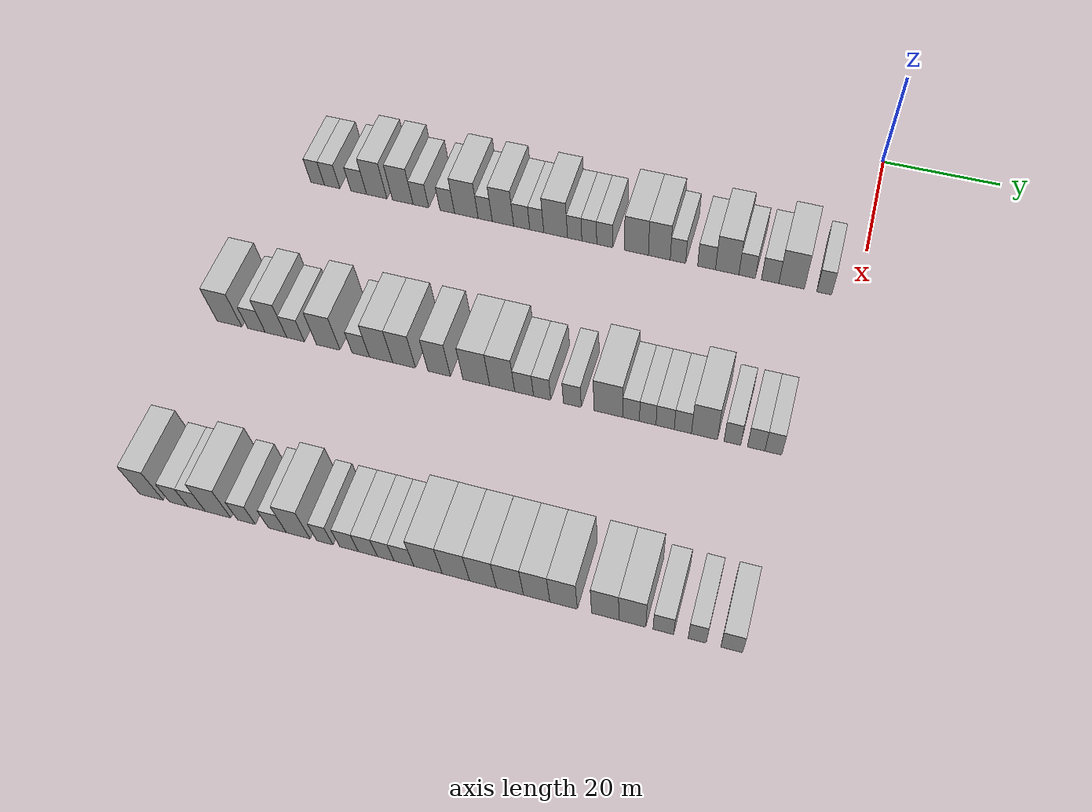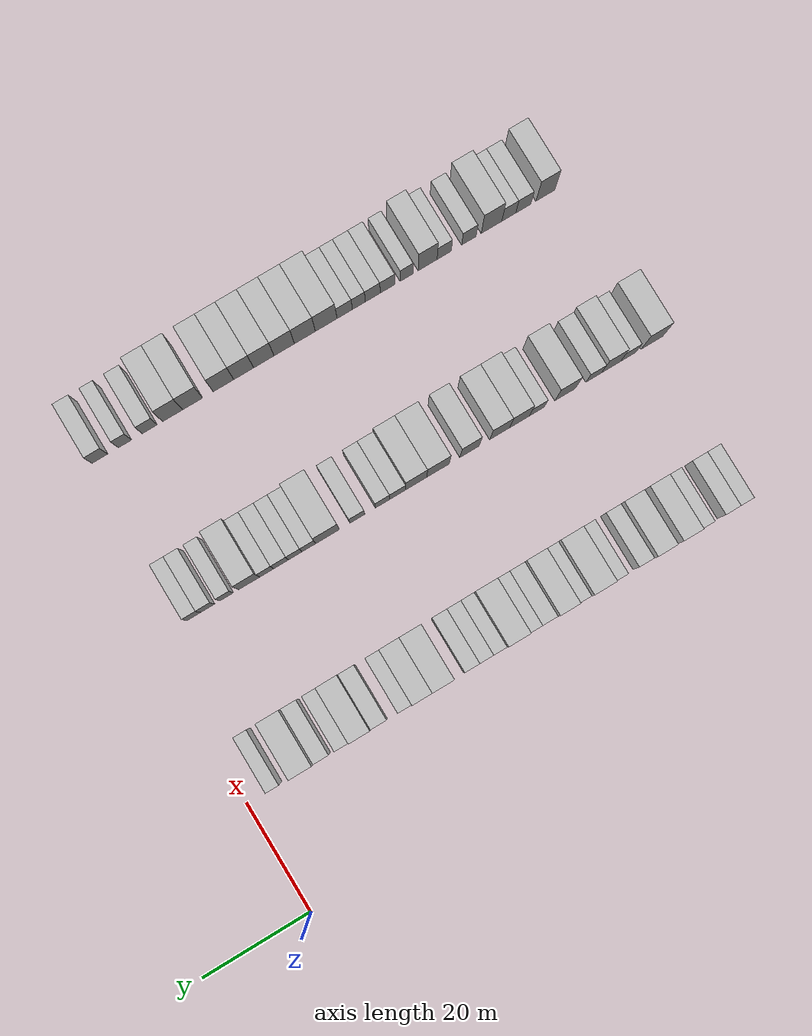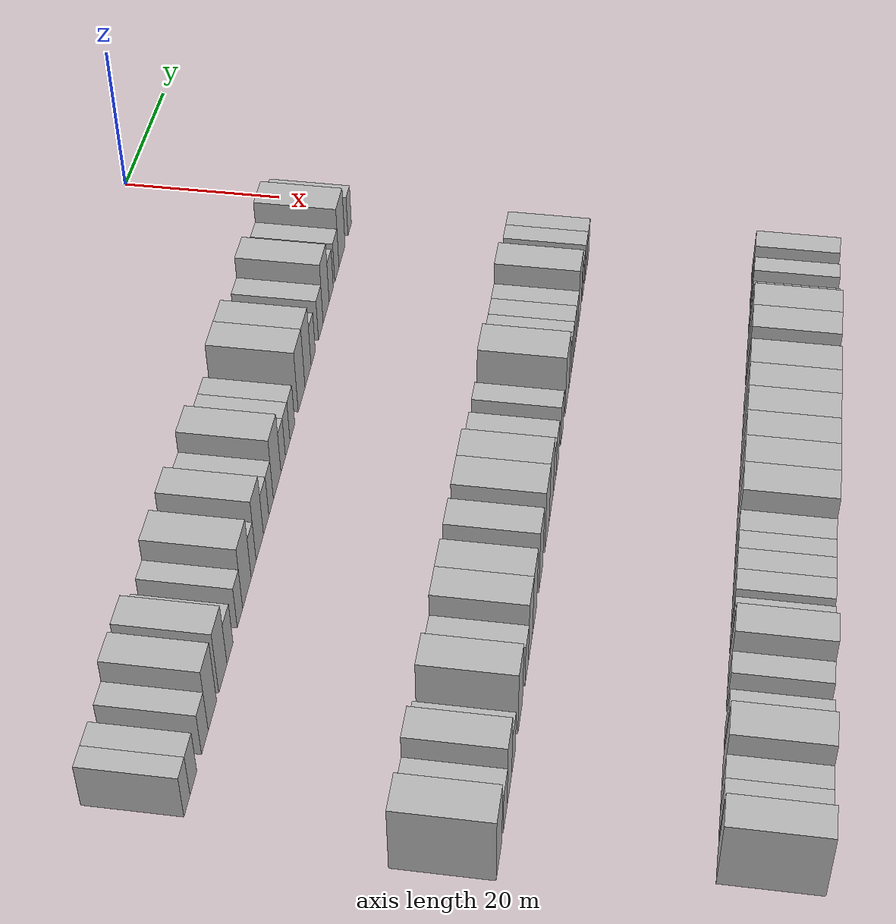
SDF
<sdf version="1.6">
 <world name="default">
  <model name="building_47">
   <static>1</static>
   <pose>25.0000 -92.5066 0 0.000000 0.000000 0.000000</pose>
   <link name="link">
    <pose>0 0 3.00 0 0 0</pose>
    <collision name="collision"><geometry><box><size>10.0000 2.4819 6.0000</size></box></geometry></collision>
    <visual name="visual">
     <cast_shadows>0</cast_shadows>
     <geometry><box><size>10.0000 2.4819 6.0000</size></box></geometry>
     <material>
      <script>
       <uri>model://HANNAS_wall/materials/scripts</uri>
       <uri>model://HANNAS_wall/materials/textures</uri>
       <name>vrc/HANNAS_wall</name>
      </script>
     </material>
    </visual>
   </link>
  </model>
  <model name="building_48">
   <static>1</static>
   <pose>25.0000 -89.8586 0 0.000000 0.000000 0.000000</pose>
   <link name="link">
    <pose>0 0 3.00 0 0 0</pose>
    <collision name="collision"><geometry><box><size>10.0000 2.8140 6.0000</size></box></geometry></collision>
    <visual name="visual">
     <cast_shadows>0</cast_shadows>
     <geometry><box><size>10.0000 2.8140 6.0000</size></box></geometry>
     <material>
      <script>
       <uri>model://HANNAS_wall/materials/scripts</uri>
       <uri>model://HANNAS_wall/materials/textures</uri>
       <name>vrc/HANNAS_wall</name>
      </script>
     </material>
    </visual>
   </link>
  </model>
  <model name="building_49">
   <static>1</static>
   <pose>25.0000 -85.0207 0 0.000000 0.000000 0.000000</pose>
   <link name="link">
    <pose>0 0 3.00 0 0 0</pose>
    <collision name="collision"><geometry><box><size>10.0000 2.8617 6.0000</size></box></geometry></collision>
    <visual name="visual">
     <cast_shadows>0</cast_shadows>
     <geometry><box><size>10.0000 2.8617 6.0000</size></box></geometry>
     <material>
      <script>
       <uri>model://HANNAS_wall/materials/scripts</uri>
       <uri>model://HANNAS_wall/materials/textures</uri>
       <name>vrc/HANNAS_wall</name>
      </script>
     </material>
    </visual>
   </link>
  </model>
  <model name="building_50">
   <static>1</static>
   <pose>25.0000 -81.7540 0 0.000000 0.000000 0.000000</pose>
   <link name="link">
    <pose>0 0 4.50 0 0 0</pose>
    <collision name="collision"><geometry><box><size>10.0000 3.6718 9.0000</size></box></geometry></collision>
    <visual name="visual">
     <cast_shadows>0</cast_shadows>
     <geometry><box><size>10.0000 3.6718 9.0000</size></box></geometry>
     <material>
      <script>
       <uri>model://HANNAS_wall/materials/scripts</uri>
       <uri>model://HANNAS_wall/materials/textures</uri>
       <name>vrc/HANNAS_wall</name>
      </script>
     </material>
    </visual>
   </link>
  </model>
  <model name="building_51">
   <static>1</static>
   <pose>25.0000 -77.0680 0 0.000000 0.000000 0.000000</pose>
   <link name="link">
    <pose>0 0 4.50 0 0 0</pose>
    <collision name="collision"><geometry><box><size>10.0000 3.7001 9.0000</size></box></geometry></collision>
    <visual name="visual">
     <cast_shadows>0</cast_shadows>
     <geometry><box><size>10.0000 3.7001 9.0000</size></box></geometry>
     <material>
      <script>
       <uri>model://HANNAS_wall/materials/scripts</uri>
       <uri>model://HANNAS_wall/materials/textures</uri>
       <name>vrc/HANNAS_wall</name>
      </script>
     </material>
    </visual>
   </link>
  </model>
  <model name="building_52">
   <static>1</static>
   <pose>25.0000 -73.8160 0 0.000000 0.000000 0.000000</pose>
   <link name="link">
    <pose>0 0 3.00 0 0 0</pose>
    <collision name="collision"><geometry><box><size>10.0000 2.8038 6.0000</size></box></geometry></collision>
    <visual name="visual">
     <cast_shadows>0</cast_shadows>
     <geometry><box><size>10.0000 2.8038 6.0000</size></box></geometry>
     <material>
      <script>
       <uri>model://HANNAS_wall/materials/scripts</uri>
       <uri>model://HANNAS_wall/materials/textures</uri>
       <name>vrc/HANNAS_wall</name>
      </script>
     </material>
    </visual>
   </link>
  </model>
  <model name="building_53">
   <static>1</static>
   <pose>25.0000 -69.1145 0 0.000000 0.000000 0.000000</pose>
   <link name="link">
    <pose>0 0 3.00 0 0 0</pose>
    <collision name="collision"><geometry><box><size>10.0000 2.5993 6.0000</size></box></geometry></collision>
    <visual name="visual">
     <cast_shadows>0</cast_shadows>
     <geometry><box><size>10.0000 2.5993 6.0000</size></box></geometry>
     <material>
      <script>
       <uri>model://HANNAS_wall/materials/scripts</uri>
       <uri>model://HANNAS_wall/materials/textures</uri>
       <name>vrc/HANNAS_wall</name>
      </script>
     </material>
    </visual>
   </link>
  </model>
  <model name="building_54">
   <static>1</static>
   <pose>25.0000 -65.7245 0 0.000000 0.000000 0.000000</pose>
   <link name="link">
    <pose>0 0 4.50 0 0 0</pose>
    <collision name="collision"><geometry><box><size>10.0000 4.1807 9.0000</size></box></geometry></collision>
    <visual name="visual">
     <cast_shadows>0</cast_shadows>
     <geometry><box><size>10.0000 4.1807 9.0000</size></box></geometry>
     <material>
      <script>
       <uri>model://HANNAS_wall/materials/scripts</uri>
       <uri>model://HANNAS_wall/materials/textures</uri>
       <name>vrc/HANNAS_wall</name>
      </script>
     </material>
    </visual>
   </link>
  </model>
  <model name="building_55">
   <static>1</static>
   <pose>25.0000 -62.4062 0 0.000000 0.000000 0.000000</pose>
   <link name="link">
    <pose>0 0 3.00 0 0 0</pose>
    <collision name="collision"><geometry><box><size>10.0000 2.4560 6.0000</size></box></geometry></collision>
    <visual name="visual">
     <cast_shadows>0</cast_shadows>
     <geometry><box><size>10.0000 2.4560 6.0000</size></box></geometry>
     <material>
      <script>
       <uri>model://HANNAS_wall/materials/scripts</uri>
       <uri>model://HANNAS_wall/materials/textures</uri>
       <name>vrc/HANNAS_wall</name>
      </script>
     </material>
    </visual>
   </link>
  </model>
  <model name="building_56">
   <static>1</static>
   <pose>25.0000 -59.3049 0 0.000000 0.000000 0.000000</pose>
   <link name="link">
    <pose>0 0 4.50 0 0 0</pose>
    <collision name="collision"><geometry><box><size>10.0000 3.7465 9.0000</size></box></geometry></collision>
    <visual name="visual">
     <cast_shadows>0</cast_shadows>
     <geometry><box><size>10.0000 3.7465 9.0000</size></box></geometry>
     <material>
      <script>
       <uri>model://HANNAS_wall/materials/scripts</uri>
       <uri>model://HANNAS_wall/materials/textures</uri>
       <name>vrc/HANNAS_wall</name>
      </script>
     </material>
    </visual>
   </link>
  </model>
  <model name="building_57">
   <static>1</static>
   <pose>25.0000 -56.0258 0 0.000000 0.000000 0.000000</pose>
   <link name="link">
    <pose>0 0 3.00 0 0 0</pose>
    <collision name="collision"><geometry><box><size>10.0000 2.8116 6.0000</size></box></geometry></collision>
    <visual name="visual">
     <cast_shadows>0</cast_shadows>
     <geometry><box><size>10.0000 2.8116 6.0000</size></box></geometry>
     <material>
      <script>
       <uri>model://HANNAS_wall/materials/scripts</uri>
       <uri>model://HANNAS_wall/materials/textures</uri>
       <name>vrc/HANNAS_wall</name>
      </script>
     </material>
    </visual>
   </link>
  </model>
  <model name="building_58">
   <static>1</static>
   <pose>25.0000 -53.4085 0 0.000000 0.000000 0.000000</pose>
   <link name="link">
    <pose>0 0 3.00 0 0 0</pose>
    <collision name="collision"><geometry><box><size>10.0000 2.4229 6.0000</size></box></geometry></collision>
    <visual name="visual">
     <cast_shadows>0</cast_shadows>
     <geometry><box><size>10.0000 2.4229 6.0000</size></box></geometry>
     <material>
      <script>
       <uri>model://HANNAS_wall/materials/scripts</uri>
       <uri>model://HANNAS_wall/materials/textures</uri>
       <name>vrc/HANNAS_wall</name>
      </script>
     </material>
    </visual>
   </link>
  </model>
  <model name="building_59">
   <static>1</static>
   <pose>25.0000 -50.1479 0 0.000000 0.000000 0.000000</pose>
   <link name="link">
    <pose>0 0 4.50 0 0 0</pose>
    <collision name="collision"><geometry><box><size>10.0000 4.0984 9.0000</size></box></geometry></collision>
    <visual name="visual">
     <cast_shadows>0</cast_shadows>
     <geometry><box><size>10.0000 4.0984 9.0000</size></box></geometry>
     <material>
      <script>
       <uri>model://HANNAS_wall/materials/scripts</uri>
       <uri>model://HANNAS_wall/materials/textures</uri>
       <name>vrc/HANNAS_wall</name>
      </script>
     </material>
    </visual>
   </link>
  </model>
  <model name="building_60">
   <static>1</static>
   <pose>25.0000 -46.8651 0 0.000000 0.000000 0.000000</pose>
   <link name="link">
    <pose>0 0 3.00 0 0 0</pose>
    <collision name="collision"><geometry><box><size>10.0000 2.4670 6.0000</size></box></geometry></collision>
    <visual name="visual">
     <cast_shadows>0</cast_shadows>
     <geometry><box><size>10.0000 2.4670 6.0000</size></box></geometry>
     <material>
      <script>
       <uri>model://HANNAS_wall/materials/scripts</uri>
       <uri>model://HANNAS_wall/materials/textures</uri>
       <name>vrc/HANNAS_wall</name>
      </script>
     </material>
    </visual>
   </link>
  </model>
  <model name="building_61">
   <static>1</static>
   <pose>25.0000 -44.3567 0 0.000000 0.000000 0.000000</pose>
   <link name="link">
    <pose>0 0 3.00 0 0 0</pose>
    <collision name="collision"><geometry><box><size>10.0000 2.5499 6.0000</size></box></geometry></collision>
    <visual name="visual">
     <cast_shadows>0</cast_shadows>
     <geometry><box><size>10.0000 2.5499 6.0000</size></box></geometry>
     <material>
      <script>
       <uri>model://HANNAS_wall/materials/scripts</uri>
       <uri>model://HANNAS_wall/materials/textures</uri>
       <name>vrc/HANNAS_wall</name>
      </script>
     </material>
    </visual>
   </link>
  </model>
  <model name="building_62">
   <static>1</static>
   <pose>25.0000 -41.7096 0 0.000000 0.000000 0.000000</pose>
   <link name="link">
    <pose>0 0 3.00 0 0 0</pose>
    <collision name="collision"><geometry><box><size>10.0000 2.7442 6.0000</size></box></geometry></collision>
    <visual name="visual">
     <cast_shadows>0</cast_shadows>
     <geometry><box><size>10.0000 2.7442 6.0000</size></box></geometry>
     <material>
      <script>
       <uri>model://HANNAS_wall/materials/scripts</uri>
       <uri>model://HANNAS_wall/materials/textures</uri>
       <name>vrc/HANNAS_wall</name>
      </script>
     </material>
    </visual>
   </link>
  </model>
  <model name="building_63">
   <static>1</static>
   <pose>25.0000 -36.3297 0 0.000000 0.000000 0.000000</pose>
   <link name="link">
    <pose>0 0 4.50 0 0 0</pose>
    <collision name="collision"><geometry><box><size>10.0000 4.0154 9.0000</size></box></geometry></collision>
    <visual name="visual">
     <cast_shadows>0</cast_shadows>
     <geometry><box><size>10.0000 4.0154 9.0000</size></box></geometry>
     <material>
      <script>
       <uri>model://HANNAS_wall/materials/scripts</uri>
       <uri>model://HANNAS_wall/materials/textures</uri>
       <name>vrc/HANNAS_wall</name>
      </script>
     </material>
    </visual>
   </link>
  </model>
  <model name="building_64">
   <static>1</static>
   <pose>25.0000 -32.4875 0 0.000000 0.000000 0.000000</pose>
   <link name="link">
    <pose>0 0 4.50 0 0 0</pose>
    <collision name="collision"><geometry><box><size>10.0000 3.6691 9.0000</size></box></geometry></collision>
    <visual name="visual">
     <cast_shadows>0</cast_shadows>
     <geometry><box><size>10.0000 3.6691 9.0000</size></box></geometry>
     <material>
      <script>
       <uri>model://HANNAS_wall/materials/scripts</uri>
       <uri>model://HANNAS_wall/materials/textures</uri>
       <name>vrc/HANNAS_wall</name>
      </script>
     </material>
    </visual>
   </link>
  </model>
  <model name="building_65">
   <static>1</static>
   <pose>25.0000 -29.3647 0 0.000000 0.000000 0.000000</pose>
   <link name="link">
    <pose>0 0 3.00 0 0 0</pose>
    <collision name="collision"><geometry><box><size>10.0000 2.5765 6.0000</size></box></geometry></collision>
    <visual name="visual">
     <cast_shadows>0</cast_shadows>
     <geometry><box><size>10.0000 2.5765 6.0000</size></box></geometry>
     <material>
      <script>
       <uri>model://HANNAS_wall/materials/scripts</uri>
       <uri>model://HANNAS_wall/materials/textures</uri>
       <name>vrc/HANNAS_wall</name>
      </script>
     </material>
    </visual>
   </link>
  </model>
  <model name="building_66">
   <static>1</static>
   <pose>25.0000 -24.5960 0 0.000000 0.000000 0.000000</pose>
   <link name="link">
    <pose>0 0 3.00 0 0 0</pose>
    <collision name="collision"><geometry><box><size>10.0000 2.9610 6.0000</size></box></geometry></collision>
    <visual name="visual">
     <cast_shadows>0</cast_shadows>
     <geometry><box><size>10.0000 2.9610 6.0000</size></box></geometry>
     <material>
      <script>
       <uri>model://HANNAS_wall/materials/scripts</uri>
       <uri>model://HANNAS_wall/materials/textures</uri>
       <name>vrc/HANNAS_wall</name>
      </script>
     </material>
    </visual>
   </link>
  </model>
  <model name="building_67">
   <static>1</static>
   <pose>25.0000 -21.1800 0 0.000000 0.000000 0.000000</pose>
   <link name="link">
    <pose>0 0 4.50 0 0 0</pose>
    <collision name="collision"><geometry><box><size>10.0000 3.8709 9.0000</size></box></geometry></collision>
    <visual name="visual">
     <cast_shadows>0</cast_shadows>
     <geometry><box><size>10.0000 3.8709 9.0000</size></box></geometry>
     <material>
      <script>
       <uri>model://HANNAS_wall/materials/scripts</uri>
       <uri>model://HANNAS_wall/materials/textures</uri>
       <name>vrc/HANNAS_wall</name>
      </script>
     </material>
    </visual>
   </link>
  </model>
  <model name="building_68">
   <static>1</static>
   <pose>25.0000 -17.8915 0 0.000000 0.000000 0.000000</pose>
   <link name="link">
    <pose>0 0 3.00 0 0 0</pose>
    <collision name="collision"><geometry><box><size>10.0000 2.7062 6.0000</size></box></geometry></collision>
    <visual name="visual">
     <cast_shadows>0</cast_shadows>
     <geometry><box><size>10.0000 2.7062 6.0000</size></box></geometry>
     <material>
      <script>
       <uri>model://HANNAS_wall/materials/scripts</uri>
       <uri>model://HANNAS_wall/materials/textures</uri>
       <name>vrc/HANNAS_wall</name>
      </script>
     </material>
    </visual>
   </link>
  </model>
  <model name="building_69">
   <static>1</static>
   <pose>25.0000 -14.1137 0 0.000000 0.000000 0.000000</pose>
   <link name="link">
    <pose>0 0 3.00 0 0 0</pose>
    <collision name="collision"><geometry><box><size>10.0000 2.8492 6.0000</size></box></geometry></collision>
    <visual name="visual">
     <cast_shadows>0</cast_shadows>
     <geometry><box><size>10.0000 2.8492 6.0000</size></box></geometry>
     <material>
      <script>
       <uri>model://HANNAS_wall/materials/scripts</uri>
       <uri>model://HANNAS_wall/materials/textures</uri>
       <name>vrc/HANNAS_wall</name>
      </script>
     </material>
    </visual>
   </link>
  </model>
  <model name="building_70">
   <static>1</static>
   <pose>25.0000 -10.6083 0 0.000000 0.000000 0.000000</pose>
   <link name="link">
    <pose>0 0 4.50 0 0 0</pose>
    <collision name="collision"><geometry><box><size>10.0000 4.1617 9.0000</size></box></geometry></collision>
    <visual name="visual">
     <cast_shadows>0</cast_shadows>
     <geometry><box><size>10.0000 4.1617 9.0000</size></box></geometry>
     <material>
      <script>
       <uri>model://HANNAS_wall/materials/scripts</uri>
       <uri>model://HANNAS_wall/materials/textures</uri>
       <name>vrc/HANNAS_wall</name>
      </script>
     </material>
    </visual>
   </link>
  </model>
  <model name="building_71">
   <static>1</static>
   <pose>25.0000 -5.3193 0 0.000000 0.000000 0.000000</pose>
   <link name="link">
    <pose>0 0 3.00 0 0 0</pose>
    <collision name="collision"><geometry><box><size>10.0000 2.4162 6.0000</size></box></geometry></collision>
    <visual name="visual">
     <cast_shadows>0</cast_shadows>
     <geometry><box><size>10.0000 2.4162 6.0000</size></box></geometry>
     <material>
      <script>
       <uri>model://HANNAS_wall/materials/scripts</uri>
       <uri>model://HANNAS_wall/materials/textures</uri>
       <name>vrc/HANNAS_wall</name>
      </script>
     </material>
    </visual>
   </link>
  </model>
  <model name="building_193">
   <static>1</static>
   <pose>55.0000 -94.6234 0 0.000000 0.000000 0.000000</pose>
   <link name="link">
    <pose>0 0 4.50 0 0 0</pose>
    <collision name="collision"><geometry><box><size>10.0000 4.2221 9.0000</size></box></geometry></collision>
    <visual name="visual">
     <cast_shadows>0</cast_shadows>
     <geometry><box><size>10.0000 4.2221 9.0000</size></box></geometry>
     <material>
      <script>
       <uri>model://HANNAS_wall/materials/scripts</uri>
       <uri>model://HANNAS_wall/materials/textures</uri>
       <name>vrc/HANNAS_wall</name>
      </script>
     </material>
    </visual>
   </link>
  </model>
  <model name="building_194">
   <static>1</static>
   <pose>55.0000 -90.0235 0 0.000000 0.000000 0.000000</pose>
   <link name="link">
    <pose>0 0 3.00 0 0 0</pose>
    <collision name="collision"><geometry><box><size>10.0000 2.9777 6.0000</size></box></geometry></collision>
    <visual name="visual">
     <cast_shadows>0</cast_shadows>
     <geometry><box><size>10.0000 2.9777 6.0000</size></box></geometry>
     <material>
      <script>
       <uri>model://HANNAS_wall/materials/scripts</uri>
       <uri>model://HANNAS_wall/materials/textures</uri>
       <name>vrc/HANNAS_wall</name>
      </script>
     </material>
    </visual>
   </link>
  </model>
  <model name="building_195">
   <static>1</static>
   <pose>55.0000 -86.7123 0 0.000000 0.000000 0.000000</pose>
   <link name="link">
    <pose>0 0 4.50 0 0 0</pose>
    <collision name="collision"><geometry><box><size>10.0000 3.6446 9.0000</size></box></geometry></collision>
    <visual name="visual">
     <cast_shadows>0</cast_shadows>
     <geometry><box><size>10.0000 3.6446 9.0000</size></box></geometry>
     <material>
      <script>
       <uri>model://HANNAS_wall/materials/scripts</uri>
       <uri>model://HANNAS_wall/materials/textures</uri>
       <name>vrc/HANNAS_wall</name>
      </script>
     </material>
    </visual>
   </link>
  </model>
  <model name="building_196">
   <static>1</static>
   <pose>55.0000 -83.4056 0 0.000000 0.000000 0.000000</pose>
   <link name="link">
    <pose>0 0 3.00 0 0 0</pose>
    <collision name="collision"><geometry><box><size>10.0000 2.9688 6.0000</size></box></geometry></collision>
    <visual name="visual">
     <cast_shadows>0</cast_shadows>
     <geometry><box><size>10.0000 2.9688 6.0000</size></box></geometry>
     <material>
      <script>
       <uri>model://HANNAS_wall/materials/scripts</uri>
       <uri>model://HANNAS_wall/materials/textures</uri>
       <name>vrc/HANNAS_wall</name>
      </script>
     </material>
    </visual>
   </link>
  </model>
  <model name="building_197">
   <static>1</static>
   <pose>55.0000 -77.9471 0 0.000000 0.000000 0.000000</pose>
   <link name="link">
    <pose>0 0 4.50 0 0 0</pose>
    <collision name="collision"><geometry><box><size>10.0000 3.9482 9.0000</size></box></geometry></collision>
    <visual name="visual">
     <cast_shadows>0</cast_shadows>
     <geometry><box><size>10.0000 3.9482 9.0000</size></box></geometry>
     <material>
      <script>
       <uri>model://HANNAS_wall/materials/scripts</uri>
       <uri>model://HANNAS_wall/materials/textures</uri>
       <name>vrc/HANNAS_wall</name>
      </script>
     </material>
    </visual>
   </link>
  </model>
  <model name="building_198">
   <static>1</static>
   <pose>55.0000 -72.5440 0 0.000000 0.000000 0.000000</pose>
   <link name="link">
    <pose>0 0 3.00 0 0 0</pose>
    <collision name="collision"><geometry><box><size>10.0000 2.8580 6.0000</size></box></geometry></collision>
    <visual name="visual">
     <cast_shadows>0</cast_shadows>
     <geometry><box><size>10.0000 2.8580 6.0000</size></box></geometry>
     <material>
      <script>
       <uri>model://HANNAS_wall/materials/scripts</uri>
       <uri>model://HANNAS_wall/materials/textures</uri>
       <name>vrc/HANNAS_wall</name>
      </script>
     </material>
    </visual>
   </link>
  </model>
  <model name="building_199">
   <static>1</static>
   <pose>55.0000 -69.2046 0 0.000000 0.000000 0.000000</pose>
   <link name="link">
    <pose>0 0 4.50 0 0 0</pose>
    <collision name="collision"><geometry><box><size>10.0000 3.8208 9.0000</size></box></geometry></collision>
    <visual name="visual">
     <cast_shadows>0</cast_shadows>
     <geometry><box><size>10.0000 3.8208 9.0000</size></box></geometry>
     <material>
      <script>
       <uri>model://HANNAS_wall/materials/scripts</uri>
       <uri>model://HANNAS_wall/materials/textures</uri>
       <name>vrc/HANNAS_wall</name>
      </script>
     </material>
    </visual>
   </link>
  </model>
  <model name="building_200">
   <static>1</static>
   <pose>55.0000 -65.4176 0 0.000000 0.000000 0.000000</pose>
   <link name="link">
    <pose>0 0 4.50 0 0 0</pose>
    <collision name="collision"><geometry><box><size>10.0000 3.7532 9.0000</size></box></geometry></collision>
    <visual name="visual">
     <cast_shadows>0</cast_shadows>
     <geometry><box><size>10.0000 3.7532 9.0000</size></box></geometry>
     <material>
      <script>
       <uri>model://HANNAS_wall/materials/scripts</uri>
       <uri>model://HANNAS_wall/materials/textures</uri>
       <name>vrc/HANNAS_wall</name>
      </script>
     </material>
    </visual>
   </link>
  </model>
  <model name="building_201">
   <static>1</static>
   <pose>55.0000 -59.7043 0 0.000000 0.000000 0.000000</pose>
   <link name="link">
    <pose>0 0 4.50 0 0 0</pose>
    <collision name="collision"><geometry><box><size>10.0000 3.6733 9.0000</size></box></geometry></collision>
    <visual name="visual">
     <cast_shadows>0</cast_shadows>
     <geometry><box><size>10.0000 3.6733 9.0000</size></box></geometry>
     <material>
      <script>
       <uri>model://HANNAS_wall/materials/scripts</uri>
       <uri>model://HANNAS_wall/materials/textures</uri>
       <name>vrc/HANNAS_wall</name>
      </script>
     </material>
    </visual>
   </link>
  </model>
  <model name="building_202">
   <static>1</static>
   <pose>55.0000 -53.7232 0 0.000000 0.000000 0.000000</pose>
   <link name="link">
    <pose>0 0 4.50 0 0 0</pose>
    <collision name="collision"><geometry><box><size>10.0000 4.2890 9.0000</size></box></geometry></collision>
    <visual name="visual">
     <cast_shadows>0</cast_shadows>
     <geometry><box><size>10.0000 4.2890 9.0000</size></box></geometry>
     <material>
      <script>
       <uri>model://HANNAS_wall/materials/scripts</uri>
       <uri>model://HANNAS_wall/materials/textures</uri>
       <name>vrc/HANNAS_wall</name>
      </script>
     </material>
    </visual>
   </link>
  </model>
  <model name="building_203">
   <static>1</static>
   <pose>55.0000 -49.5824 0 0.000000 0.000000 0.000000</pose>
   <link name="link">
    <pose>0 0 4.50 0 0 0</pose>
    <collision name="collision"><geometry><box><size>10.0000 3.9925 9.0000</size></box></geometry></collision>
    <visual name="visual">
     <cast_shadows>0</cast_shadows>
     <geometry><box><size>10.0000 3.9925 9.0000</size></box></geometry>
     <material>
      <script>
       <uri>model://HANNAS_wall/materials/scripts</uri>
       <uri>model://HANNAS_wall/materials/textures</uri>
       <name>vrc/HANNAS_wall</name>
      </script>
     </material>
    </visual>
   </link>
  </model>
  <model name="building_204">
   <static>1</static>
   <pose>55.0000 -46.0960 0 0.000000 0.000000 0.000000</pose>
   <link name="link">
    <pose>0 0 3.00 0 0 0</pose>
    <collision name="collision"><geometry><box><size>10.0000 2.9804 6.0000</size></box></geometry></collision>
    <visual name="visual">
     <cast_shadows>0</cast_shadows>
     <geometry><box><size>10.0000 2.9804 6.0000</size></box></geometry>
     <material>
      <script>
       <uri>model://HANNAS_wall/materials/scripts</uri>
       <uri>model://HANNAS_wall/materials/textures</uri>
       <name>vrc/HANNAS_wall</name>
      </script>
     </material>
    </visual>
   </link>
  </model>
  <model name="building_205">
   <static>1</static>
   <pose>55.0000 -43.2446 0 0.000000 0.000000 0.000000</pose>
   <link name="link">
    <pose>0 0 3.00 0 0 0</pose>
    <collision name="collision"><geometry><box><size>10.0000 2.7223 6.0000</size></box></geometry></collision>
    <visual name="visual">
     <cast_shadows>0</cast_shadows>
     <geometry><box><size>10.0000 2.7223 6.0000</size></box></geometry>
     <material>
      <script>
       <uri>model://HANNAS_wall/materials/scripts</uri>
       <uri>model://HANNAS_wall/materials/textures</uri>
       <name>vrc/HANNAS_wall</name>
      </script>
     </material>
    </visual>
   </link>
  </model>
  <model name="building_206">
   <static>1</static>
   <pose>55.0000 -38.4884 0 0.000000 0.000000 0.000000</pose>
   <link name="link">
    <pose>0 0 3.00 0 0 0</pose>
    <collision name="collision"><geometry><box><size>10.0000 2.7902 6.0000</size></box></geometry></collision>
    <visual name="visual">
     <cast_shadows>0</cast_shadows>
     <geometry><box><size>10.0000 2.7902 6.0000</size></box></geometry>
     <material>
      <script>
       <uri>model://HANNAS_wall/materials/scripts</uri>
       <uri>model://HANNAS_wall/materials/textures</uri>
       <name>vrc/HANNAS_wall</name>
      </script>
     </material>
    </visual>
   </link>
  </model>
  <model name="building_207">
   <static>1</static>
   <pose>55.0000 -32.8705 0 0.000000 0.000000 0.000000</pose>
   <link name="link">
    <pose>0 0 4.50 0 0 0</pose>
    <collision name="collision"><geometry><box><size>10.0000 4.4456 9.0000</size></box></geometry></collision>
    <visual name="visual">
     <cast_shadows>0</cast_shadows>
     <geometry><box><size>10.0000 4.4456 9.0000</size></box></geometry>
     <material>
      <script>
       <uri>model://HANNAS_wall/materials/scripts</uri>
       <uri>model://HANNAS_wall/materials/textures</uri>
       <name>vrc/HANNAS_wall</name>
      </script>
     </material>
    </visual>
   </link>
  </model>
  <model name="building_208">
   <static>1</static>
   <pose>55.0000 -29.3634 0 0.000000 0.000000 0.000000</pose>
   <link name="link">
    <pose>0 0 3.00 0 0 0</pose>
    <collision name="collision"><geometry><box><size>10.0000 2.5686 6.0000</size></box></geometry></collision>
    <visual name="visual">
     <cast_shadows>0</cast_shadows>
     <geometry><box><size>10.0000 2.5686 6.0000</size></box></geometry>
     <material>
      <script>
       <uri>model://HANNAS_wall/materials/scripts</uri>
       <uri>model://HANNAS_wall/materials/textures</uri>
       <name>vrc/HANNAS_wall</name>
      </script>
     </material>
    </visual>
   </link>
  </model>
  <model name="building_209">
   <static>1</static>
   <pose>55.0000 -26.8086 0 0.000000 0.000000 0.000000</pose>
   <link name="link">
    <pose>0 0 3.00 0 0 0</pose>
    <collision name="collision"><geometry><box><size>10.0000 2.5410 6.0000</size></box></geometry></collision>
    <visual name="visual">
     <cast_shadows>0</cast_shadows>
     <geometry><box><size>10.0000 2.5410 6.0000</size></box></geometry>
     <material>
      <script>
       <uri>model://HANNAS_wall/materials/scripts</uri>
       <uri>model://HANNAS_wall/materials/textures</uri>
       <name>vrc/HANNAS_wall</name>
      </script>
     </material>
    </visual>
   </link>
  </model>
  <model name="building_210">
   <static>1</static>
   <pose>55.0000 -24.1452 0 0.000000 0.000000 0.000000</pose>
   <link name="link">
    <pose>0 0 3.00 0 0 0</pose>
    <collision name="collision"><geometry><box><size>10.0000 2.7859 6.0000</size></box></geometry></collision>
    <visual name="visual">
     <cast_shadows>0</cast_shadows>
     <geometry><box><size>10.0000 2.7859 6.0000</size></box></geometry>
     <material>
      <script>
       <uri>model://HANNAS_wall/materials/scripts</uri>
       <uri>model://HANNAS_wall/materials/textures</uri>
       <name>vrc/HANNAS_wall</name>
      </script>
     </material>
    </visual>
   </link>
  </model>
  <model name="building_211">
   <static>1</static>
   <pose>55.0000 -21.4398 0 0.000000 0.000000 0.000000</pose>
   <link name="link">
    <pose>0 0 3.00 0 0 0</pose>
    <collision name="collision"><geometry><box><size>10.0000 2.6249 6.0000</size></box></geometry></collision>
    <visual name="visual">
     <cast_shadows>0</cast_shadows>
     <geometry><box><size>10.0000 2.6249 6.0000</size></box></geometry>
     <material>
      <script>
       <uri>model://HANNAS_wall/materials/scripts</uri>
       <uri>model://HANNAS_wall/materials/textures</uri>
       <name>vrc/HANNAS_wall</name>
      </script>
     </material>
    </visual>
   </link>
  </model>
  <model name="building_212">
   <static>1</static>
   <pose>55.0000 -18.1672 0 0.000000 0.000000 0.000000</pose>
   <link name="link">
    <pose>0 0 4.50 0 0 0</pose>
    <collision name="collision"><geometry><box><size>10.0000 3.9202 9.0000</size></box></geometry></collision>
    <visual name="visual">
     <cast_shadows>0</cast_shadows>
     <geometry><box><size>10.0000 3.9202 9.0000</size></box></geometry>
     <material>
      <script>
       <uri>model://HANNAS_wall/materials/scripts</uri>
       <uri>model://HANNAS_wall/materials/textures</uri>
       <name>vrc/HANNAS_wall</name>
      </script>
     </material>
    </visual>
   </link>
  </model>
  <model name="building_213">
   <static>1</static>
   <pose>55.0000 -13.9471 0 0.000000 0.000000 0.000000</pose>
   <link name="link">
    <pose>0 0 3.00 0 0 0</pose>
    <collision name="collision"><geometry><box><size>10.0000 2.5202 6.0000</size></box></geometry></collision>
    <visual name="visual">
     <cast_shadows>0</cast_shadows>
     <geometry><box><size>10.0000 2.5202 6.0000</size></box></geometry>
     <material>
      <script>
       <uri>model://HANNAS_wall/materials/scripts</uri>
       <uri>model://HANNAS_wall/materials/textures</uri>
       <name>vrc/HANNAS_wall</name>
      </script>
     </material>
    </visual>
   </link>
  </model>
  <model name="building_214">
   <static>1</static>
   <pose>55.0000 -10.3829 0 0.000000 0.000000 0.000000</pose>
   <link name="link">
    <pose>0 0 3.00 0 0 0</pose>
    <collision name="collision"><geometry><box><size>10.0000 2.6081 6.0000</size></box></geometry></collision>
    <visual name="visual">
     <cast_shadows>0</cast_shadows>
     <geometry><box><size>10.0000 2.6081 6.0000</size></box></geometry>
     <material>
      <script>
       <uri>model://HANNAS_wall/materials/scripts</uri>
       <uri>model://HANNAS_wall/materials/textures</uri>
       <name>vrc/HANNAS_wall</name>
      </script>
     </material>
    </visual>
   </link>
  </model>
  <model name="building_215">
   <static>1</static>
   <pose>55.0000 -7.8164 0 0.000000 0.000000 0.000000</pose>
   <link name="link">
    <pose>0 0 3.00 0 0 0</pose>
    <collision name="collision"><geometry><box><size>10.0000 2.5250 6.0000</size></box></geometry></collision>
    <visual name="visual">
     <cast_shadows>0</cast_shadows>
     <geometry><box><size>10.0000 2.5250 6.0000</size></box></geometry>
     <material>
      <script>
       <uri>model://HANNAS_wall/materials/scripts</uri>
       <uri>model://HANNAS_wall/materials/textures</uri>
       <name>vrc/HANNAS_wall</name>
      </script>
     </material>
    </visual>
   </link>
  </model>
  <model name="building_331">
   <static>1</static>
   <pose>85.0000 -92.5218 0 0.000000 0.000000 0.000000</pose>
   <link name="link">
    <pose>0 0 4.50 0 0 0</pose>
    <collision name="collision"><geometry><box><size>10.0000 3.6480 9.0000</size></box></geometry></collision>
    <visual name="visual">
     <cast_shadows>0</cast_shadows>
     <geometry><box><size>10.0000 3.6480 9.0000</size></box></geometry>
     <material>
      <script>
       <uri>model://HANNAS_wall/materials/scripts</uri>
       <uri>model://HANNAS_wall/materials/textures</uri>
       <name>vrc/HANNAS_wall</name>
      </script>
     </material>
    </visual>
   </link>
  </model>
  <model name="building_332">
   <static>1</static>
   <pose>85.0000 -88.2569 0 0.000000 0.000000 0.000000</pose>
   <link name="link">
    <pose>0 0 3.00 0 0 0</pose>
    <collision name="collision"><geometry><box><size>10.0000 2.8818 6.0000</size></box></geometry></collision>
    <visual name="visual">
     <cast_shadows>0</cast_shadows>
     <geometry><box><size>10.0000 2.8818 6.0000</size></box></geometry>
     <material>
      <script>
       <uri>model://HANNAS_wall/materials/scripts</uri>
       <uri>model://HANNAS_wall/materials/textures</uri>
       <name>vrc/HANNAS_wall</name>
      </script>
     </material>
    </visual>
   </link>
  </model>
  <model name="building_333">
   <static>1</static>
   <pose>85.0000 -85.4648 0 0.000000 0.000000 0.000000</pose>
   <link name="link">
    <pose>0 0 3.00 0 0 0</pose>
    <collision name="collision"><geometry><box><size>10.0000 2.7025 6.0000</size></box></geometry></collision>
    <visual name="visual">
     <cast_shadows>0</cast_shadows>
     <geometry><box><size>10.0000 2.7025 6.0000</size></box></geometry>
     <material>
      <script>
       <uri>model://HANNAS_wall/materials/scripts</uri>
       <uri>model://HANNAS_wall/materials/textures</uri>
       <name>vrc/HANNAS_wall</name>
      </script>
     </material>
    </visual>
   </link>
  </model>
  <model name="building_334">
   <static>1</static>
   <pose>85.0000 -82.1275 0 0.000000 0.000000 0.000000</pose>
   <link name="link">
    <pose>0 0 4.50 0 0 0</pose>
    <collision name="collision"><geometry><box><size>10.0000 3.9720 9.0000</size></box></geometry></collision>
    <visual name="visual">
     <cast_shadows>0</cast_shadows>
     <geometry><box><size>10.0000 3.9720 9.0000</size></box></geometry>
     <material>
      <script>
       <uri>model://HANNAS_wall/materials/scripts</uri>
       <uri>model://HANNAS_wall/materials/textures</uri>
       <name>vrc/HANNAS_wall</name>
      </script>
     </material>
    </visual>
   </link>
  </model>
  <model name="building_335">
   <static>1</static>
   <pose>85.0000 -77.7569 0 0.000000 0.000000 0.000000</pose>
   <link name="link">
    <pose>0 0 3.00 0 0 0</pose>
    <collision name="collision"><geometry><box><size>10.0000 2.7691 6.0000</size></box></geometry></collision>
    <visual name="visual">
     <cast_shadows>0</cast_shadows>
     <geometry><box><size>10.0000 2.7691 6.0000</size></box></geometry>
     <material>
      <script>
       <uri>model://HANNAS_wall/materials/scripts</uri>
       <uri>model://HANNAS_wall/materials/textures</uri>
       <name>vrc/HANNAS_wall</name>
      </script>
     </material>
    </visual>
   </link>
  </model>
  <model name="building_336">
   <static>1</static>
   <pose>85.0000 -73.0073 0 0.000000 0.000000 0.000000</pose>
   <link name="link">
    <pose>0 0 3.00 0 0 0</pose>
    <collision name="collision"><geometry><box><size>10.0000 2.7302 6.0000</size></box></geometry></collision>
    <visual name="visual">
     <cast_shadows>0</cast_shadows>
     <geometry><box><size>10.0000 2.7302 6.0000</size></box></geometry>
     <material>
      <script>
       <uri>model://HANNAS_wall/materials/scripts</uri>
       <uri>model://HANNAS_wall/materials/textures</uri>
       <name>vrc/HANNAS_wall</name>
      </script>
     </material>
    </visual>
   </link>
  </model>
  <model name="building_337">
   <static>1</static>
   <pose>85.0000 -69.8333 0 0.000000 0.000000 0.000000</pose>
   <link name="link">
    <pose>0 0 4.50 0 0 0</pose>
    <collision name="collision"><geometry><box><size>10.0000 3.6180 9.0000</size></box></geometry></collision>
    <visual name="visual">
     <cast_shadows>0</cast_shadows>
     <geometry><box><size>10.0000 3.6180 9.0000</size></box></geometry>
     <material>
      <script>
       <uri>model://HANNAS_wall/materials/scripts</uri>
       <uri>model://HANNAS_wall/materials/textures</uri>
       <name>vrc/HANNAS_wall</name>
      </script>
     </material>
    </visual>
   </link>
  </model>
  <model name="building_338">
   <static>1</static>
   <pose>85.0000 -65.7975 0 0.000000 0.000000 0.000000</pose>
   <link name="link">
    <pose>0 0 3.00 0 0 0</pose>
    <collision name="collision"><geometry><box><size>10.0000 2.4535 6.0000</size></box></geometry></collision>
    <visual name="visual">
     <cast_shadows>0</cast_shadows>
     <geometry><box><size>10.0000 2.4535 6.0000</size></box></geometry>
     <material>
      <script>
       <uri>model://HANNAS_wall/materials/scripts</uri>
       <uri>model://HANNAS_wall/materials/textures</uri>
       <name>vrc/HANNAS_wall</name>
      </script>
     </material>
    </visual>
   </link>
  </model>
  <model name="building_339">
   <static>1</static>
   <pose>85.0000 -62.1774 0 0.000000 0.000000 0.000000</pose>
   <link name="link">
    <pose>0 0 3.00 0 0 0</pose>
    <collision name="collision"><geometry><box><size>10.0000 2.7869 6.0000</size></box></geometry></collision>
    <visual name="visual">
     <cast_shadows>0</cast_shadows>
     <geometry><box><size>10.0000 2.7869 6.0000</size></box></geometry>
     <material>
      <script>
       <uri>model://HANNAS_wall/materials/scripts</uri>
       <uri>model://HANNAS_wall/materials/textures</uri>
       <name>vrc/HANNAS_wall</name>
      </script>
     </material>
    </visual>
   </link>
  </model>
  <model name="building_340">
   <static>1</static>
   <pose>85.0000 -59.3566 0 0.000000 0.000000 0.000000</pose>
   <link name="link">
    <pose>0 0 3.00 0 0 0</pose>
    <collision name="collision"><geometry><box><size>10.0000 2.8547 6.0000</size></box></geometry></collision>
    <visual name="visual">
     <cast_shadows>0</cast_shadows>
     <geometry><box><size>10.0000 2.8547 6.0000</size></box></geometry>
     <material>
      <script>
       <uri>model://HANNAS_wall/materials/scripts</uri>
       <uri>model://HANNAS_wall/materials/textures</uri>
       <name>vrc/HANNAS_wall</name>
      </script>
     </material>
    </visual>
   </link>
  </model>
  <model name="building_341">
   <static>1</static>
   <pose>85.0000 -56.6941 0 0.000000 0.000000 0.000000</pose>
   <link name="link">
    <pose>0 0 3.00 0 0 0</pose>
    <collision name="collision"><geometry><box><size>10.0000 2.4705 6.0000</size></box></geometry></collision>
    <visual name="visual">
     <cast_shadows>0</cast_shadows>
     <geometry><box><size>10.0000 2.4705 6.0000</size></box></geometry>
     <material>
      <script>
       <uri>model://HANNAS_wall/materials/scripts</uri>
       <uri>model://HANNAS_wall/materials/textures</uri>
       <name>vrc/HANNAS_wall</name>
      </script>
     </material>
    </visual>
   </link>
  </model>
  <model name="building_342">
   <static>1</static>
   <pose>85.0000 -54.0019 0 0.000000 0.000000 0.000000</pose>
   <link name="link">
    <pose>0 0 3.00 0 0 0</pose>
    <collision name="collision"><geometry><box><size>10.0000 2.9139 6.0000</size></box></geometry></collision>
    <visual name="visual">
     <cast_shadows>0</cast_shadows>
     <geometry><box><size>10.0000 2.9139 6.0000</size></box></geometry>
     <material>
      <script>
       <uri>model://HANNAS_wall/materials/scripts</uri>
       <uri>model://HANNAS_wall/materials/textures</uri>
       <name>vrc/HANNAS_wall</name>
      </script>
     </material>
    </visual>
   </link>
  </model>
  <model name="building_343">
   <static>1</static>
   <pose>85.0000 -50.4735 0 0.000000 0.000000 0.000000</pose>
   <link name="link">
    <pose>0 0 4.50 0 0 0</pose>
    <collision name="collision"><geometry><box><size>10.0000 4.1429 9.0000</size></box></geometry></collision>
    <visual name="visual">
     <cast_shadows>0</cast_shadows>
     <geometry><box><size>10.0000 4.1429 9.0000</size></box></geometry>
     <material>
      <script>
       <uri>model://HANNAS_wall/materials/scripts</uri>
       <uri>model://HANNAS_wall/materials/textures</uri>
       <name>vrc/HANNAS_wall</name>
      </script>
     </material>
    </visual>
   </link>
  </model>
  <model name="building_344">
   <static>1</static>
   <pose>85.0000 -46.4092 0 0.000000 0.000000 0.000000</pose>
   <link name="link">
    <pose>0 0 4.50 0 0 0</pose>
    <collision name="collision"><geometry><box><size>10.0000 3.9857 9.0000</size></box></geometry></collision>
    <visual name="visual">
     <cast_shadows>0</cast_shadows>
     <geometry><box><size>10.0000 3.9857 9.0000</size></box></geometry>
     <material>
      <script>
       <uri>model://HANNAS_wall/materials/scripts</uri>
       <uri>model://HANNAS_wall/materials/textures</uri>
       <name>vrc/HANNAS_wall</name>
      </script>
     </material>
    </visual>
   </link>
  </model>
  <model name="building_345">
   <static>1</static>
   <pose>85.0000 -42.4802 0 0.000000 0.000000 0.000000</pose>
   <link name="link">
    <pose>0 0 4.50 0 0 0</pose>
    <collision name="collision"><geometry><box><size>10.0000 3.8723 9.0000</size></box></geometry></collision>
    <visual name="visual">
     <cast_shadows>0</cast_shadows>
     <geometry><box><size>10.0000 3.8723 9.0000</size></box></geometry>
     <material>
      <script>
       <uri>model://HANNAS_wall/materials/scripts</uri>
       <uri>model://HANNAS_wall/materials/textures</uri>
       <name>vrc/HANNAS_wall</name>
      </script>
     </material>
    </visual>
   </link>
  </model>
  <model name="building_346">
   <static>1</static>
   <pose>85.0000 -38.6034 0 0.000000 0.000000 0.000000</pose>
   <link name="link">
    <pose>0 0 4.50 0 0 0</pose>
    <collision name="collision"><geometry><box><size>10.0000 3.8811 9.0000</size></box></geometry></collision>
    <visual name="visual">
     <cast_shadows>0</cast_shadows>
     <geometry><box><size>10.0000 3.8811 9.0000</size></box></geometry>
     <material>
      <script>
       <uri>model://HANNAS_wall/materials/scripts</uri>
       <uri>model://HANNAS_wall/materials/textures</uri>
       <name>vrc/HANNAS_wall</name>
      </script>
     </material>
    </visual>
   </link>
  </model>
  <model name="building_347">
   <static>1</static>
   <pose>85.0000 -34.7844 0 0.000000 0.000000 0.000000</pose>
   <link name="link">
    <pose>0 0 4.50 0 0 0</pose>
    <collision name="collision"><geometry><box><size>10.0000 3.7570 9.0000</size></box></geometry></collision>
    <visual name="visual">
     <cast_shadows>0</cast_shadows>
     <geometry><box><size>10.0000 3.7570 9.0000</size></box></geometry>
     <material>
      <script>
       <uri>model://HANNAS_wall/materials/scripts</uri>
       <uri>model://HANNAS_wall/materials/textures</uri>
       <name>vrc/HANNAS_wall</name>
      </script>
     </material>
    </visual>
   </link>
  </model>
  <model name="building_348">
   <static>1</static>
   <pose>85.0000 -30.9584 0 0.000000 0.000000 0.000000</pose>
   <link name="link">
    <pose>0 0 4.50 0 0 0</pose>
    <collision name="collision"><geometry><box><size>10.0000 3.8952 9.0000</size></box></geometry></collision>
    <visual name="visual">
     <cast_shadows>0</cast_shadows>
     <geometry><box><size>10.0000 3.8952 9.0000</size></box></geometry>
     <material>
      <script>
       <uri>model://HANNAS_wall/materials/scripts</uri>
       <uri>model://HANNAS_wall/materials/textures</uri>
       <name>vrc/HANNAS_wall</name>
      </script>
     </material>
    </visual>
   </link>
  </model>
  <model name="building_349">
   <static>1</static>
   <pose>85.0000 -25.1199 0 0.000000 0.000000 0.000000</pose>
   <link name="link">
    <pose>0 0 4.50 0 0 0</pose>
    <collision name="collision"><geometry><box><size>10.0000 3.7818 9.0000</size></box></geometry></collision>
    <visual name="visual">
     <cast_shadows>0</cast_shadows>
     <geometry><box><size>10.0000 3.7818 9.0000</size></box></geometry>
     <material>
      <script>
       <uri>model://HANNAS_wall/materials/scripts</uri>
       <uri>model://HANNAS_wall/materials/textures</uri>
       <name>vrc/HANNAS_wall</name>
      </script>
     </material>
    </visual>
   </link>
  </model>
  <model name="building_350">
   <static>1</static>
   <pose>85.0000 -21.3363 0 0.000000 0.000000 0.000000</pose>
   <link name="link">
    <pose>0 0 4.50 0 0 0</pose>
    <collision name="collision"><geometry><box><size>10.0000 3.7853 9.0000</size></box></geometry></collision>
    <visual name="visual">
     <cast_shadows>0</cast_shadows>
     <geometry><box><size>10.0000 3.7853 9.0000</size></box></geometry>
     <material>
      <script>
       <uri>model://HANNAS_wall/materials/scripts</uri>
       <uri>model://HANNAS_wall/materials/textures</uri>
       <name>vrc/HANNAS_wall</name>
      </script>
     </material>
    </visual>
   </link>
  </model>
  <model name="building_351">
   <static>1</static>
   <pose>85.0000 -17.0262 0 0.000000 0.000000 0.000000</pose>
   <link name="link">
    <pose>0 0 3.00 0 0 0</pose>
    <collision name="collision"><geometry><box><size>10.0000 2.8348 6.0000</size></box></geometry></collision>
    <visual name="visual">
     <cast_shadows>0</cast_shadows>
     <geometry><box><size>10.0000 2.8348 6.0000</size></box></geometry>
     <material>
      <script>
       <uri>model://HANNAS_wall/materials/scripts</uri>
       <uri>model://HANNAS_wall/materials/textures</uri>
       <name>vrc/HANNAS_wall</name>
      </script>
     </material>
    </visual>
   </link>
  </model>
  <model name="building_352">
   <static>1</static>
   <pose>85.0000 -12.3738 0 0.000000 0.000000 0.000000</pose>
   <link name="link">
    <pose>0 0 3.00 0 0 0</pose>
    <collision name="collision"><geometry><box><size>10.0000 2.4700 6.0000</size></box></geometry></collision>
    <visual name="visual">
     <cast_shadows>0</cast_shadows>
     <geometry><box><size>10.0000 2.4700 6.0000</size></box></geometry>
     <material>
      <script>
       <uri>model://HANNAS_wall/materials/scripts</uri>
       <uri>model://HANNAS_wall/materials/textures</uri>
       <name>vrc/HANNAS_wall</name>
      </script>
     </material>
    </visual>
   </link>
  </model>
  <model name="building_353">
   <static>1</static>
   <pose>85.0000 -7.6637 0 0.000000 0.000000 0.000000</pose>
   <link name="link">
    <pose>0 0 3.00 0 0 0</pose>
    <collision name="collision"><geometry><box><size>10.0000 2.9501 6.0000</size></box></geometry></collision>
    <visual name="visual">
     <cast_shadows>0</cast_shadows>
     <geometry><box><size>10.0000 2.9501 6.0000</size></box></geometry>
     <material>
      <script>
       <uri>model://HANNAS_wall/materials/scripts</uri>
       <uri>model://HANNAS_wall/materials/textures</uri>
       <name>vrc/HANNAS_wall</name>
      </script>
     </material>
    </visual>
   </link>
  </model>
 </world>
</sdf>
